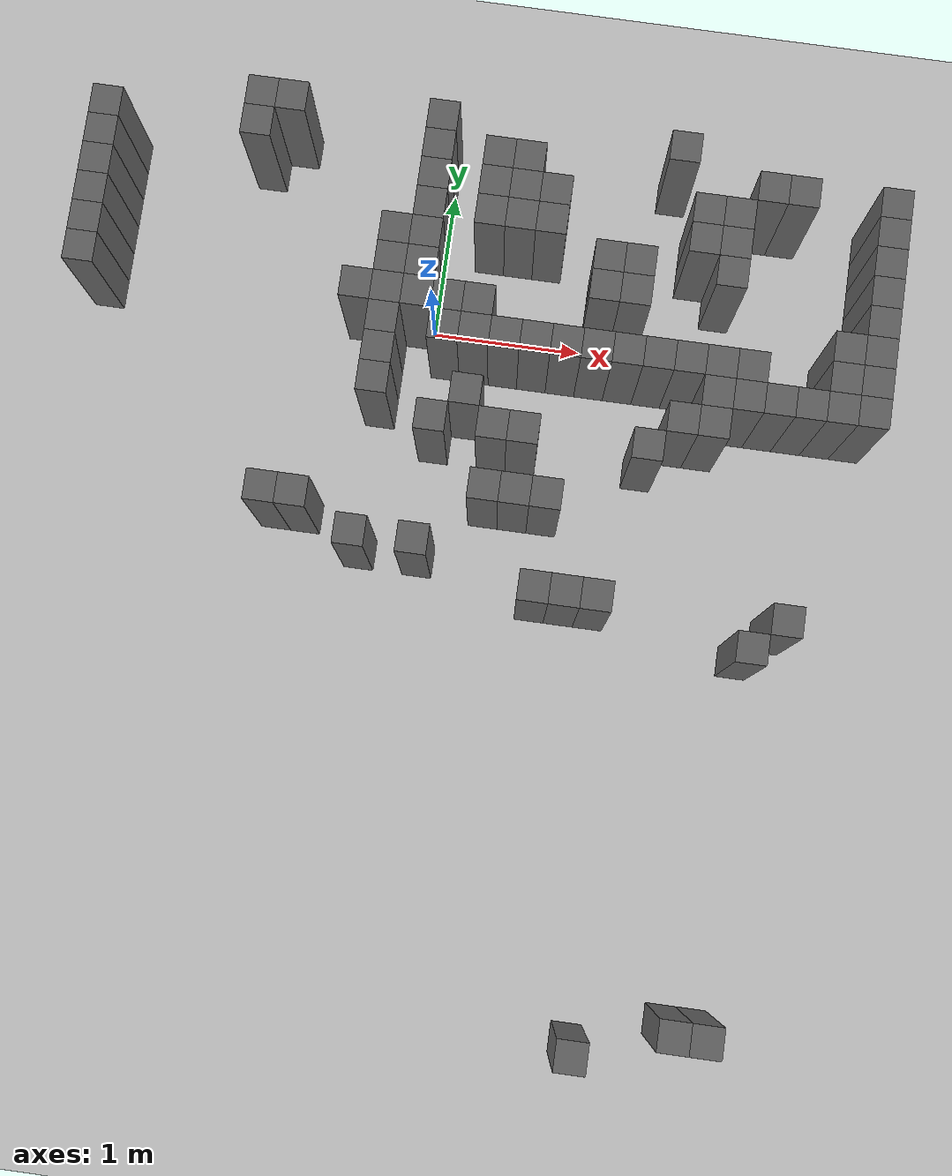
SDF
<sdf version="1.6">
 <world name="slam_world">
  <include><uri>model://sun</uri></include>
  <include><uri>model://ground_plane</uri></include>
  <model name="wall_92">
   <static>true</static>
   <pose>-1.290 1.190 0.500 0 0 0</pose>
   <link name="link">
    <collision name="collision"><geometry><box><size>0.200 0.200 1.000</size></box></geometry></collision>
    <visual name="visual">
     <geometry><box><size>0.200 0.200 1.000</size></box></geometry>
     <material><ambient>0.3 0.3 0.3 1</ambient><diffuse>0.4 0.4 0.4 1</diffuse></material>
    </visual>
   </link>
  </model>
  <model name="wall_93">
   <static>true</static>
   <pose>-1.090 1.190 0.500 0 0 0</pose>
   <link name="link">
    <collision name="collision"><geometry><box><size>0.200 0.200 1.000</size></box></geometry></collision>
    <visual name="visual">
     <geometry><box><size>0.200 0.200 1.000</size></box></geometry>
     <material><ambient>0.3 0.3 0.3 1</ambient><diffuse>0.4 0.4 0.4 1</diffuse></material>
    </visual>
   </link>
  </model>
  <model name="wall_94">
   <static>true</static>
   <pose>-0.090 1.190 0.500 0 0 0</pose>
   <link name="link">
    <collision name="collision"><geometry><box><size>0.200 0.200 1.000</size></box></geometry></collision>
    <visual name="visual">
     <geometry><box><size>0.200 0.200 1.000</size></box></geometry>
     <material><ambient>0.3 0.3 0.3 1</ambient><diffuse>0.4 0.4 0.4 1</diffuse></material>
    </visual>
   </link>
  </model>
  <model name="wall_95">
   <static>true</static>
   <pose>1.510 1.190 0.500 0 0 0</pose>
   <link name="link">
    <collision name="collision"><geometry><box><size>0.200 0.200 1.000</size></box></geometry></collision>
    <visual name="visual">
     <geometry><box><size>0.200 0.200 1.000</size></box></geometry>
     <material><ambient>0.3 0.3 0.3 1</ambient><diffuse>0.4 0.4 0.4 1</diffuse></material>
    </visual>
   </link>
  </model>
  <model name="wall_98">
   <static>true</static>
   <pose>-2.290 0.990 0.500 0 0 0</pose>
   <link name="link">
    <collision name="collision"><geometry><box><size>0.200 0.200 1.000</size></box></geometry></collision>
    <visual name="visual">
     <geometry><box><size>0.200 0.200 1.000</size></box></geometry>
     <material><ambient>0.3 0.3 0.3 1</ambient><diffuse>0.4 0.4 0.4 1</diffuse></material>
    </visual>
   </link>
  </model>
  <model name="wall_99">
   <static>true</static>
   <pose>-1.290 0.990 0.500 0 0 0</pose>
   <link name="link">
    <collision name="collision"><geometry><box><size>0.200 0.200 1.000</size></box></geometry></collision>
    <visual name="visual">
     <geometry><box><size>0.200 0.200 1.000</size></box></geometry>
     <material><ambient>0.3 0.3 0.3 1</ambient><diffuse>0.4 0.4 0.4 1</diffuse></material>
    </visual>
   </link>
  </model>
  <model name="wall_100">
   <static>true</static>
   <pose>-0.090 0.990 0.500 0 0 0</pose>
   <link name="link">
    <collision name="collision"><geometry><box><size>0.200 0.200 1.000</size></box></geometry></collision>
    <visual name="visual">
     <geometry><box><size>0.200 0.200 1.000</size></box></geometry>
     <material><ambient>0.3 0.3 0.3 1</ambient><diffuse>0.4 0.4 0.4 1</diffuse></material>
    </visual>
   </link>
  </model>
  <model name="wall_101">
   <static>true</static>
   <pose>0.310 0.990 0.500 0 0 0</pose>
   <link name="link">
    <collision name="collision"><geometry><box><size>0.200 0.200 1.000</size></box></geometry></collision>
    <visual name="visual">
     <geometry><box><size>0.200 0.200 1.000</size></box></geometry>
     <material><ambient>0.3 0.3 0.3 1</ambient><diffuse>0.4 0.4 0.4 1</diffuse></material>
    </visual>
   </link>
  </model>
  <model name="wall_102">
   <static>true</static>
   <pose>0.510 0.990 0.500 0 0 0</pose>
   <link name="link">
    <collision name="collision"><geometry><box><size>0.200 0.200 1.000</size></box></geometry></collision>
    <visual name="visual">
     <geometry><box><size>0.200 0.200 1.000</size></box></geometry>
     <material><ambient>0.3 0.3 0.3 1</ambient><diffuse>0.4 0.4 0.4 1</diffuse></material>
    </visual>
   </link>
  </model>
  <model name="wall_103">
   <static>true</static>
   <pose>2.110 0.990 0.500 0 0 0</pose>
   <link name="link">
    <collision name="collision"><geometry><box><size>0.200 0.200 1.000</size></box></geometry></collision>
    <visual name="visual">
     <geometry><box><size>0.200 0.200 1.000</size></box></geometry>
     <material><ambient>0.3 0.3 0.3 1</ambient><diffuse>0.4 0.4 0.4 1</diffuse></material>
    </visual>
   </link>
  </model>
  <model name="wall_104">
   <static>true</static>
   <pose>2.310 0.990 0.500 0 0 0</pose>
   <link name="link">
    <collision name="collision"><geometry><box><size>0.200 0.200 1.000</size></box></geometry></collision>
    <visual name="visual">
     <geometry><box><size>0.200 0.200 1.000</size></box></geometry>
     <material><ambient>0.3 0.3 0.3 1</ambient><diffuse>0.4 0.4 0.4 1</diffuse></material>
    </visual>
   </link>
  </model>
  <model name="wall_105">
   <static>true</static>
   <pose>2.910 0.990 0.500 0 0 0</pose>
   <link name="link">
    <collision name="collision"><geometry><box><size>0.200 0.200 1.000</size></box></geometry></collision>
    <visual name="visual">
     <geometry><box><size>0.200 0.200 1.000</size></box></geometry>
     <material><ambient>0.3 0.3 0.3 1</ambient><diffuse>0.4 0.4 0.4 1</diffuse></material>
    </visual>
   </link>
  </model>
  <model name="wall_106">
   <static>true</static>
   <pose>-2.290 0.790 0.500 0 0 0</pose>
   <link name="link">
    <collision name="collision"><geometry><box><size>0.200 0.200 1.000</size></box></geometry></collision>
    <visual name="visual">
     <geometry><box><size>0.200 0.200 1.000</size></box></geometry>
     <material><ambient>0.3 0.3 0.3 1</ambient><diffuse>0.4 0.4 0.4 1</diffuse></material>
    </visual>
   </link>
  </model>
  <model name="wall_107">
   <static>true</static>
   <pose>-0.090 0.790 0.500 0 0 0</pose>
   <link name="link">
    <collision name="collision"><geometry><box><size>0.200 0.200 1.000</size></box></geometry></collision>
    <visual name="visual">
     <geometry><box><size>0.200 0.200 1.000</size></box></geometry>
     <material><ambient>0.3 0.3 0.3 1</ambient><diffuse>0.4 0.4 0.4 1</diffuse></material>
    </visual>
   </link>
  </model>
  <model name="wall_108">
   <static>true</static>
   <pose>0.310 0.790 0.500 0 0 0</pose>
   <link name="link">
    <collision name="collision"><geometry><box><size>0.200 0.200 1.000</size></box></geometry></collision>
    <visual name="visual">
     <geometry><box><size>0.200 0.200 1.000</size></box></geometry>
     <material><ambient>0.3 0.3 0.3 1</ambient><diffuse>0.4 0.4 0.4 1</diffuse></material>
    </visual>
   </link>
  </model>
  <model name="wall_109">
   <static>true</static>
   <pose>0.510 0.790 0.500 0 0 0</pose>
   <link name="link">
    <collision name="collision"><geometry><box><size>0.200 0.200 1.000</size></box></geometry></collision>
    <visual name="visual">
     <geometry><box><size>0.200 0.200 1.000</size></box></geometry>
     <material><ambient>0.3 0.3 0.3 1</ambient><diffuse>0.4 0.4 0.4 1</diffuse></material>
    </visual>
   </link>
  </model>
  <model name="wall_110">
   <static>true</static>
   <pose>0.710 0.790 0.500 0 0 0</pose>
   <link name="link">
    <collision name="collision"><geometry><box><size>0.200 0.200 1.000</size></box></geometry></collision>
    <visual name="visual">
     <geometry><box><size>0.200 0.200 1.000</size></box></geometry>
     <material><ambient>0.3 0.3 0.3 1</ambient><diffuse>0.4 0.4 0.4 1</diffuse></material>
    </visual>
   </link>
  </model>
  <model name="wall_111">
   <static>true</static>
   <pose>1.710 0.790 0.500 0 0 0</pose>
   <link name="link">
    <collision name="collision"><geometry><box><size>0.200 0.200 1.000</size></box></geometry></collision>
    <visual name="visual">
     <geometry><box><size>0.200 0.200 1.000</size></box></geometry>
     <material><ambient>0.3 0.3 0.3 1</ambient><diffuse>0.4 0.4 0.4 1</diffuse></material>
    </visual>
   </link>
  </model>
  <model name="wall_112">
   <static>true</static>
   <pose>1.910 0.790 0.500 0 0 0</pose>
   <link name="link">
    <collision name="collision"><geometry><box><size>0.200 0.200 1.000</size></box></geometry></collision>
    <visual name="visual">
     <geometry><box><size>0.200 0.200 1.000</size></box></geometry>
     <material><ambient>0.3 0.3 0.3 1</ambient><diffuse>0.4 0.4 0.4 1</diffuse></material>
    </visual>
   </link>
  </model>
  <model name="wall_113">
   <static>true</static>
   <pose>2.910 0.790 0.500 0 0 0</pose>
   <link name="link">
    <collision name="collision"><geometry><box><size>0.200 0.200 1.000</size></box></geometry></collision>
    <visual name="visual">
     <geometry><box><size>0.200 0.200 1.000</size></box></geometry>
     <material><ambient>0.3 0.3 0.3 1</ambient><diffuse>0.4 0.4 0.4 1</diffuse></material>
    </visual>
   </link>
  </model>
  <model name="wall_114">
   <static>true</static>
   <pose>-2.290 0.590 0.500 0 0 0</pose>
   <link name="link">
    <collision name="collision"><geometry><box><size>0.200 0.200 1.000</size></box></geometry></collision>
    <visual name="visual">
     <geometry><box><size>0.200 0.200 1.000</size></box></geometry>
     <material><ambient>0.3 0.3 0.3 1</ambient><diffuse>0.4 0.4 0.4 1</diffuse></material>
    </visual>
   </link>
  </model>
  <model name="wall_115">
   <static>true</static>
   <pose>-0.090 0.590 0.500 0 0 0</pose>
   <link name="link">
    <collision name="collision"><geometry><box><size>0.200 0.200 1.000</size></box></geometry></collision>
    <visual name="visual">
     <geometry><box><size>0.200 0.200 1.000</size></box></geometry>
     <material><ambient>0.3 0.3 0.3 1</ambient><diffuse>0.4 0.4 0.4 1</diffuse></material>
    </visual>
   </link>
  </model>
  <model name="wall_116">
   <static>true</static>
   <pose>0.310 0.590 0.500 0 0 0</pose>
   <link name="link">
    <collision name="collision"><geometry><box><size>0.200 0.200 1.000</size></box></geometry></collision>
    <visual name="visual">
     <geometry><box><size>0.200 0.200 1.000</size></box></geometry>
     <material><ambient>0.3 0.3 0.3 1</ambient><diffuse>0.4 0.4 0.4 1</diffuse></material>
    </visual>
   </link>
  </model>
  <model name="wall_117">
   <static>true</static>
   <pose>0.510 0.590 0.500 0 0 0</pose>
   <link name="link">
    <collision name="collision"><geometry><box><size>0.200 0.200 1.000</size></box></geometry></collision>
    <visual name="visual">
     <geometry><box><size>0.200 0.200 1.000</size></box></geometry>
     <material><ambient>0.3 0.3 0.3 1</ambient><diffuse>0.4 0.4 0.4 1</diffuse></material>
    </visual>
   </link>
  </model>
  <model name="wall_118">
   <static>true</static>
   <pose>0.710 0.590 0.500 0 0 0</pose>
   <link name="link">
    <collision name="collision"><geometry><box><size>0.200 0.200 1.000</size></box></geometry></collision>
    <visual name="visual">
     <geometry><box><size>0.200 0.200 1.000</size></box></geometry>
     <material><ambient>0.3 0.3 0.3 1</ambient><diffuse>0.4 0.4 0.4 1</diffuse></material>
    </visual>
   </link>
  </model>
  <model name="wall_119">
   <static>true</static>
   <pose>1.710 0.590 0.500 0 0 0</pose>
   <link name="link">
    <collision name="collision"><geometry><box><size>0.200 0.200 1.000</size></box></geometry></collision>
    <visual name="visual">
     <geometry><box><size>0.200 0.200 1.000</size></box></geometry>
     <material><ambient>0.3 0.3 0.3 1</ambient><diffuse>0.4 0.4 0.4 1</diffuse></material>
    </visual>
   </link>
  </model>
  <model name="wall_120">
   <static>true</static>
   <pose>1.910 0.590 0.500 0 0 0</pose>
   <link name="link">
    <collision name="collision"><geometry><box><size>0.200 0.200 1.000</size></box></geometry></collision>
    <visual name="visual">
     <geometry><box><size>0.200 0.200 1.000</size></box></geometry>
     <material><ambient>0.3 0.3 0.3 1</ambient><diffuse>0.4 0.4 0.4 1</diffuse></material>
    </visual>
   </link>
  </model>
  <model name="wall_121">
   <static>true</static>
   <pose>2.910 0.590 0.500 0 0 0</pose>
   <link name="link">
    <collision name="collision"><geometry><box><size>0.200 0.200 1.000</size></box></geometry></collision>
    <visual name="visual">
     <geometry><box><size>0.200 0.200 1.000</size></box></geometry>
     <material><ambient>0.3 0.3 0.3 1</ambient><diffuse>0.4 0.4 0.4 1</diffuse></material>
    </visual>
   </link>
  </model>
  <model name="wall_122">
   <static>true</static>
   <pose>-2.290 0.390 0.500 0 0 0</pose>
   <link name="link">
    <collision name="collision"><geometry><box><size>0.200 0.200 1.000</size></box></geometry></collision>
    <visual name="visual">
     <geometry><box><size>0.200 0.200 1.000</size></box></geometry>
     <material><ambient>0.3 0.3 0.3 1</ambient><diffuse>0.4 0.4 0.4 1</diffuse></material>
    </visual>
   </link>
  </model>
  <model name="wall_123">
   <static>true</static>
   <pose>-0.290 0.390 0.500 0 0 0</pose>
   <link name="link">
    <collision name="collision"><geometry><box><size>0.200 0.200 1.000</size></box></geometry></collision>
    <visual name="visual">
     <geometry><box><size>0.200 0.200 1.000</size></box></geometry>
     <material><ambient>0.3 0.3 0.3 1</ambient><diffuse>0.4 0.4 0.4 1</diffuse></material>
    </visual>
   </link>
  </model>
  <model name="wall_124">
   <static>true</static>
   <pose>-0.090 0.390 0.500 0 0 0</pose>
   <link name="link">
    <collision name="collision"><geometry><box><size>0.200 0.200 1.000</size></box></geometry></collision>
    <visual name="visual">
     <geometry><box><size>0.200 0.200 1.000</size></box></geometry>
     <material><ambient>0.3 0.3 0.3 1</ambient><diffuse>0.4 0.4 0.4 1</diffuse></material>
    </visual>
   </link>
  </model>
  <model name="wall_125">
   <static>true</static>
   <pose>1.110 0.390 0.500 0 0 0</pose>
   <link name="link">
    <collision name="collision"><geometry><box><size>0.200 0.200 1.000</size></box></geometry></collision>
    <visual name="visual">
     <geometry><box><size>0.200 0.200 1.000</size></box></geometry>
     <material><ambient>0.3 0.3 0.3 1</ambient><diffuse>0.4 0.4 0.4 1</diffuse></material>
    </visual>
   </link>
  </model>
  <model name="wall_126">
   <static>true</static>
   <pose>1.310 0.390 0.500 0 0 0</pose>
   <link name="link">
    <collision name="collision"><geometry><box><size>0.200 0.200 1.000</size></box></geometry></collision>
    <visual name="visual">
     <geometry><box><size>0.200 0.200 1.000</size></box></geometry>
     <material><ambient>0.3 0.3 0.3 1</ambient><diffuse>0.4 0.4 0.4 1</diffuse></material>
    </visual>
   </link>
  </model>
  <model name="wall_127">
   <static>true</static>
   <pose>1.910 0.390 0.500 0 0 0</pose>
   <link name="link">
    <collision name="collision"><geometry><box><size>0.200 0.200 1.000</size></box></geometry></collision>
    <visual name="visual">
     <geometry><box><size>0.200 0.200 1.000</size></box></geometry>
     <material><ambient>0.3 0.3 0.3 1</ambient><diffuse>0.4 0.4 0.4 1</diffuse></material>
    </visual>
   </link>
  </model>
  <model name="wall_128">
   <static>true</static>
   <pose>2.910 0.390 0.500 0 0 0</pose>
   <link name="link">
    <collision name="collision"><geometry><box><size>0.200 0.200 1.000</size></box></geometry></collision>
    <visual name="visual">
     <geometry><box><size>0.200 0.200 1.000</size></box></geometry>
     <material><ambient>0.3 0.3 0.3 1</ambient><diffuse>0.4 0.4 0.4 1</diffuse></material>
    </visual>
   </link>
  </model>
  <model name="wall_129">
   <static>true</static>
   <pose>-2.290 0.190 0.500 0 0 0</pose>
   <link name="link">
    <collision name="collision"><geometry><box><size>0.200 0.200 1.000</size></box></geometry></collision>
    <visual name="visual">
     <geometry><box><size>0.200 0.200 1.000</size></box></geometry>
     <material><ambient>0.3 0.3 0.3 1</ambient><diffuse>0.4 0.4 0.4 1</diffuse></material>
    </visual>
   </link>
  </model>
  <model name="wall_130">
   <static>true</static>
   <pose>-0.290 0.190 0.500 0 0 0</pose>
   <link name="link">
    <collision name="collision"><geometry><box><size>0.200 0.200 1.000</size></box></geometry></collision>
    <visual name="visual">
     <geometry><box><size>0.200 0.200 1.000</size></box></geometry>
     <material><ambient>0.3 0.3 0.3 1</ambient><diffuse>0.4 0.4 0.4 1</diffuse></material>
    </visual>
   </link>
  </model>
  <model name="wall_131">
   <static>true</static>
   <pose>-0.090 0.190 0.500 0 0 0</pose>
   <link name="link">
    <collision name="collision"><geometry><box><size>0.200 0.200 1.000</size></box></geometry></collision>
    <visual name="visual">
     <geometry><box><size>0.200 0.200 1.000</size></box></geometry>
     <material><ambient>0.3 0.3 0.3 1</ambient><diffuse>0.4 0.4 0.4 1</diffuse></material>
    </visual>
   </link>
  </model>
  <model name="wall_132">
   <static>true</static>
   <pose>1.110 0.190 0.500 0 0 0</pose>
   <link name="link">
    <collision name="collision"><geometry><box><size>0.200 0.200 1.000</size></box></geometry></collision>
    <visual name="visual">
     <geometry><box><size>0.200 0.200 1.000</size></box></geometry>
     <material><ambient>0.3 0.3 0.3 1</ambient><diffuse>0.4 0.4 0.4 1</diffuse></material>
    </visual>
   </link>
  </model>
  <model name="wall_133">
   <static>true</static>
   <pose>1.310 0.190 0.500 0 0 0</pose>
   <link name="link">
    <collision name="collision"><geometry><box><size>0.200 0.200 1.000</size></box></geometry></collision>
    <visual name="visual">
     <geometry><box><size>0.200 0.200 1.000</size></box></geometry>
     <material><ambient>0.3 0.3 0.3 1</ambient><diffuse>0.4 0.4 0.4 1</diffuse></material>
    </visual>
   </link>
  </model>
  <model name="wall_134">
   <static>true</static>
   <pose>2.910 0.190 0.500 0 0 0</pose>
   <link name="link">
    <collision name="collision"><geometry><box><size>0.200 0.200 1.000</size></box></geometry></collision>
    <visual name="visual">
     <geometry><box><size>0.200 0.200 1.000</size></box></geometry>
     <material><ambient>0.3 0.3 0.3 1</ambient><diffuse>0.4 0.4 0.4 1</diffuse></material>
    </visual>
   </link>
  </model>
  <model name="wall_135">
   <static>true</static>
   <pose>-2.290 -0.010 0.500 0 0 0</pose>
   <link name="link">
    <collision name="collision"><geometry><box><size>0.200 0.200 1.000</size></box></geometry></collision>
    <visual name="visual">
     <geometry><box><size>0.200 0.200 1.000</size></box></geometry>
     <material><ambient>0.3 0.3 0.3 1</ambient><diffuse>0.4 0.4 0.4 1</diffuse></material>
    </visual>
   </link>
  </model>
  <model name="wall_136">
   <static>true</static>
   <pose>-0.490 -0.010 0.500 0 0 0</pose>
   <link name="link">
    <collision name="collision"><geometry><box><size>0.200 0.200 1.000</size></box></geometry></collision>
    <visual name="visual">
     <geometry><box><size>0.200 0.200 1.000</size></box></geometry>
     <material><ambient>0.3 0.3 0.3 1</ambient><diffuse>0.4 0.4 0.4 1</diffuse></material>
    </visual>
   </link>
  </model>
  <model name="wall_137">
   <static>true</static>
   <pose>-0.290 -0.010 0.500 0 0 0</pose>
   <link name="link">
    <collision name="collision"><geometry><box><size>0.200 0.200 1.000</size></box></geometry></collision>
    <visual name="visual">
     <geometry><box><size>0.200 0.200 1.000</size></box></geometry>
     <material><ambient>0.3 0.3 0.3 1</ambient><diffuse>0.4 0.4 0.4 1</diffuse></material>
    </visual>
   </link>
  </model>
  <model name="wall_138">
   <static>true</static>
   <pose>-0.090 -0.010 0.500 0 0 0</pose>
   <link name="link">
    <collision name="collision"><geometry><box><size>0.200 0.200 1.000</size></box></geometry></collision>
    <visual name="visual">
     <geometry><box><size>0.200 0.200 1.000</size></box></geometry>
     <material><ambient>0.3 0.3 0.3 1</ambient><diffuse>0.4 0.4 0.4 1</diffuse></material>
    </visual>
   </link>
  </model>
  <model name="wall_139">
   <static>true</static>
   <pose>0.110 -0.010 0.500 0 0 0</pose>
   <link name="link">
    <collision name="collision"><geometry><box><size>0.200 0.200 1.000</size></box></geometry></collision>
    <visual name="visual">
     <geometry><box><size>0.200 0.200 1.000</size></box></geometry>
     <material><ambient>0.3 0.3 0.3 1</ambient><diffuse>0.4 0.4 0.4 1</diffuse></material>
    </visual>
   </link>
  </model>
  <model name="wall_140">
   <static>true</static>
   <pose>0.310 -0.010 0.500 0 0 0</pose>
   <link name="link">
    <collision name="collision"><geometry><box><size>0.200 0.200 1.000</size></box></geometry></collision>
    <visual name="visual">
     <geometry><box><size>0.200 0.200 1.000</size></box></geometry>
     <material><ambient>0.3 0.3 0.3 1</ambient><diffuse>0.4 0.4 0.4 1</diffuse></material>
    </visual>
   </link>
  </model>
  <model name="wall_141">
   <static>true</static>
   <pose>2.710 -0.010 0.500 0 0 0</pose>
   <link name="link">
    <collision name="collision"><geometry><box><size>0.200 0.200 1.000</size></box></geometry></collision>
    <visual name="visual">
     <geometry><box><size>0.200 0.200 1.000</size></box></geometry>
     <material><ambient>0.3 0.3 0.3 1</ambient><diffuse>0.4 0.4 0.4 1</diffuse></material>
    </visual>
   </link>
  </model>
  <model name="wall_142">
   <static>true</static>
   <pose>2.910 -0.010 0.500 0 0 0</pose>
   <link name="link">
    <collision name="collision"><geometry><box><size>0.200 0.200 1.000</size></box></geometry></collision>
    <visual name="visual">
     <geometry><box><size>0.200 0.200 1.000</size></box></geometry>
     <material><ambient>0.3 0.3 0.3 1</ambient><diffuse>0.4 0.4 0.4 1</diffuse></material>
    </visual>
   </link>
  </model>
  <model name="wall_143">
   <static>true</static>
   <pose>-0.290 -0.210 0.500 0 0 0</pose>
   <link name="link">
    <collision name="collision"><geometry><box><size>0.200 0.200 1.000</size></box></geometry></collision>
    <visual name="visual">
     <geometry><box><size>0.200 0.200 1.000</size></box></geometry>
     <material><ambient>0.3 0.3 0.3 1</ambient><diffuse>0.4 0.4 0.4 1</diffuse></material>
    </visual>
   </link>
  </model>
  <model name="wall_144">
   <static>true</static>
   <pose>0.110 -0.210 0.500 0 0 0</pose>
   <link name="link">
    <collision name="collision"><geometry><box><size>0.200 0.200 1.000</size></box></geometry></collision>
    <visual name="visual">
     <geometry><box><size>0.200 0.200 1.000</size></box></geometry>
     <material><ambient>0.3 0.3 0.3 1</ambient><diffuse>0.4 0.4 0.4 1</diffuse></material>
    </visual>
   </link>
  </model>
  <model name="wall_145">
   <static>true</static>
   <pose>0.310 -0.210 0.500 0 0 0</pose>
   <link name="link">
    <collision name="collision"><geometry><box><size>0.200 0.200 1.000</size></box></geometry></collision>
    <visual name="visual">
     <geometry><box><size>0.200 0.200 1.000</size></box></geometry>
     <material><ambient>0.3 0.3 0.3 1</ambient><diffuse>0.4 0.4 0.4 1</diffuse></material>
    </visual>
   </link>
  </model>
  <model name="wall_146">
   <static>true</static>
   <pose>0.510 -0.210 0.500 0 0 0</pose>
   <link name="link">
    <collision name="collision"><geometry><box><size>0.200 0.200 1.000</size></box></geometry></collision>
    <visual name="visual">
     <geometry><box><size>0.200 0.200 1.000</size></box></geometry>
     <material><ambient>0.3 0.3 0.3 1</ambient><diffuse>0.4 0.4 0.4 1</diffuse></material>
    </visual>
   </link>
  </model>
  <model name="wall_147">
   <static>true</static>
   <pose>0.710 -0.210 0.500 0 0 0</pose>
   <link name="link">
    <collision name="collision"><geometry><box><size>0.200 0.200 1.000</size></box></geometry></collision>
    <visual name="visual">
     <geometry><box><size>0.200 0.200 1.000</size></box></geometry>
     <material><ambient>0.3 0.3 0.3 1</ambient><diffuse>0.4 0.4 0.4 1</diffuse></material>
    </visual>
   </link>
  </model>
  <model name="wall_148">
   <static>true</static>
   <pose>0.910 -0.210 0.500 0 0 0</pose>
   <link name="link">
    <collision name="collision"><geometry><box><size>0.200 0.200 1.000</size></box></geometry></collision>
    <visual name="visual">
     <geometry><box><size>0.200 0.200 1.000</size></box></geometry>
     <material><ambient>0.3 0.3 0.3 1</ambient><diffuse>0.4 0.4 0.4 1</diffuse></material>
    </visual>
   </link>
  </model>
  <model name="wall_149">
   <static>true</static>
   <pose>1.110 -0.210 0.500 0 0 0</pose>
   <link name="link">
    <collision name="collision"><geometry><box><size>0.200 0.200 1.000</size></box></geometry></collision>
    <visual name="visual">
     <geometry><box><size>0.200 0.200 1.000</size></box></geometry>
     <material><ambient>0.3 0.3 0.3 1</ambient><diffuse>0.4 0.4 0.4 1</diffuse></material>
    </visual>
   </link>
  </model>
  <model name="wall_150">
   <static>true</static>
   <pose>1.310 -0.210 0.500 0 0 0</pose>
   <link name="link">
    <collision name="collision"><geometry><box><size>0.200 0.200 1.000</size></box></geometry></collision>
    <visual name="visual">
     <geometry><box><size>0.200 0.200 1.000</size></box></geometry>
     <material><ambient>0.3 0.3 0.3 1</ambient><diffuse>0.4 0.4 0.4 1</diffuse></material>
    </visual>
   </link>
  </model>
  <model name="wall_151">
   <static>true</static>
   <pose>1.510 -0.210 0.500 0 0 0</pose>
   <link name="link">
    <collision name="collision"><geometry><box><size>0.200 0.200 1.000</size></box></geometry></collision>
    <visual name="visual">
     <geometry><box><size>0.200 0.200 1.000</size></box></geometry>
     <material><ambient>0.3 0.3 0.3 1</ambient><diffuse>0.4 0.4 0.4 1</diffuse></material>
    </visual>
   </link>
  </model>
  <model name="wall_152">
   <static>true</static>
   <pose>1.710 -0.210 0.500 0 0 0</pose>
   <link name="link">
    <collision name="collision"><geometry><box><size>0.200 0.200 1.000</size></box></geometry></collision>
    <visual name="visual">
     <geometry><box><size>0.200 0.200 1.000</size></box></geometry>
     <material><ambient>0.3 0.3 0.3 1</ambient><diffuse>0.4 0.4 0.4 1</diffuse></material>
    </visual>
   </link>
  </model>
  <model name="wall_153">
   <static>true</static>
   <pose>1.910 -0.210 0.500 0 0 0</pose>
   <link name="link">
    <collision name="collision"><geometry><box><size>0.200 0.200 1.000</size></box></geometry></collision>
    <visual name="visual">
     <geometry><box><size>0.200 0.200 1.000</size></box></geometry>
     <material><ambient>0.3 0.3 0.3 1</ambient><diffuse>0.4 0.4 0.4 1</diffuse></material>
    </visual>
   </link>
  </model>
  <model name="wall_154">
   <static>true</static>
   <pose>2.110 -0.210 0.500 0 0 0</pose>
   <link name="link">
    <collision name="collision"><geometry><box><size>0.200 0.200 1.000</size></box></geometry></collision>
    <visual name="visual">
     <geometry><box><size>0.200 0.200 1.000</size></box></geometry>
     <material><ambient>0.3 0.3 0.3 1</ambient><diffuse>0.4 0.4 0.4 1</diffuse></material>
    </visual>
   </link>
  </model>
  <model name="wall_155">
   <static>true</static>
   <pose>2.710 -0.210 0.500 0 0 0</pose>
   <link name="link">
    <collision name="collision"><geometry><box><size>0.200 0.200 1.000</size></box></geometry></collision>
    <visual name="visual">
     <geometry><box><size>0.200 0.200 1.000</size></box></geometry>
     <material><ambient>0.3 0.3 0.3 1</ambient><diffuse>0.4 0.4 0.4 1</diffuse></material>
    </visual>
   </link>
  </model>
  <model name="wall_156">
   <static>true</static>
   <pose>2.910 -0.210 0.500 0 0 0</pose>
   <link name="link">
    <collision name="collision"><geometry><box><size>0.200 0.200 1.000</size></box></geometry></collision>
    <visual name="visual">
     <geometry><box><size>0.200 0.200 1.000</size></box></geometry>
     <material><ambient>0.3 0.3 0.3 1</ambient><diffuse>0.4 0.4 0.4 1</diffuse></material>
    </visual>
   </link>
  </model>
  <model name="wall_157">
   <static>true</static>
   <pose>-0.290 -0.410 0.500 0 0 0</pose>
   <link name="link">
    <collision name="collision"><geometry><box><size>0.200 0.200 1.000</size></box></geometry></collision>
    <visual name="visual">
     <geometry><box><size>0.200 0.200 1.000</size></box></geometry>
     <material><ambient>0.3 0.3 0.3 1</ambient><diffuse>0.4 0.4 0.4 1</diffuse></material>
    </visual>
   </link>
  </model>
  <model name="wall_158">
   <static>true</static>
   <pose>1.910 -0.410 0.500 0 0 0</pose>
   <link name="link">
    <collision name="collision"><geometry><box><size>0.200 0.200 1.000</size></box></geometry></collision>
    <visual name="visual">
     <geometry><box><size>0.200 0.200 1.000</size></box></geometry>
     <material><ambient>0.3 0.3 0.3 1</ambient><diffuse>0.4 0.4 0.4 1</diffuse></material>
    </visual>
   </link>
  </model>
  <model name="wall_159">
   <static>true</static>
   <pose>2.110 -0.410 0.500 0 0 0</pose>
   <link name="link">
    <collision name="collision"><geometry><box><size>0.200 0.200 1.000</size></box></geometry></collision>
    <visual name="visual">
     <geometry><box><size>0.200 0.200 1.000</size></box></geometry>
     <material><ambient>0.3 0.3 0.3 1</ambient><diffuse>0.4 0.4 0.4 1</diffuse></material>
    </visual>
   </link>
  </model>
  <model name="wall_160">
   <static>true</static>
   <pose>2.310 -0.410 0.500 0 0 0</pose>
   <link name="link">
    <collision name="collision"><geometry><box><size>0.200 0.200 1.000</size></box></geometry></collision>
    <visual name="visual">
     <geometry><box><size>0.200 0.200 1.000</size></box></geometry>
     <material><ambient>0.3 0.3 0.3 1</ambient><diffuse>0.4 0.4 0.4 1</diffuse></material>
    </visual>
   </link>
  </model>
  <model name="wall_161">
   <static>true</static>
   <pose>2.510 -0.410 0.500 0 0 0</pose>
   <link name="link">
    <collision name="collision"><geometry><box><size>0.200 0.200 1.000</size></box></geometry></collision>
    <visual name="visual">
     <geometry><box><size>0.200 0.200 1.000</size></box></geometry>
     <material><ambient>0.3 0.3 0.3 1</ambient><diffuse>0.4 0.4 0.4 1</diffuse></material>
    </visual>
   </link>
  </model>
  <model name="wall_162">
   <static>true</static>
   <pose>2.710 -0.410 0.500 0 0 0</pose>
   <link name="link">
    <collision name="collision"><geometry><box><size>0.200 0.200 1.000</size></box></geometry></collision>
    <visual name="visual">
     <geometry><box><size>0.200 0.200 1.000</size></box></geometry>
     <material><ambient>0.3 0.3 0.3 1</ambient><diffuse>0.4 0.4 0.4 1</diffuse></material>
    </visual>
   </link>
  </model>
  <model name="wall_163">
   <static>true</static>
   <pose>2.910 -0.410 0.500 0 0 0</pose>
   <link name="link">
    <collision name="collision"><geometry><box><size>0.200 0.200 1.000</size></box></geometry></collision>
    <visual name="visual">
     <geometry><box><size>0.200 0.200 1.000</size></box></geometry>
     <material><ambient>0.3 0.3 0.3 1</ambient><diffuse>0.4 0.4 0.4 1</diffuse></material>
    </visual>
   </link>
  </model>
  <model name="wall_164">
   <static>true</static>
   <pose>-0.290 -0.610 0.500 0 0 0</pose>
   <link name="link">
    <collision name="collision"><geometry><box><size>0.200 0.200 1.000</size></box></geometry></collision>
    <visual name="visual">
     <geometry><box><size>0.200 0.200 1.000</size></box></geometry>
     <material><ambient>0.3 0.3 0.3 1</ambient><diffuse>0.4 0.4 0.4 1</diffuse></material>
    </visual>
   </link>
  </model>
  <model name="wall_165">
   <static>true</static>
   <pose>0.310 -0.610 0.500 0 0 0</pose>
   <link name="link">
    <collision name="collision"><geometry><box><size>0.200 0.200 1.000</size></box></geometry></collision>
    <visual name="visual">
     <geometry><box><size>0.200 0.200 1.000</size></box></geometry>
     <material><ambient>0.3 0.3 0.3 1</ambient><diffuse>0.4 0.4 0.4 1</diffuse></material>
    </visual>
   </link>
  </model>
  <model name="wall_166">
   <static>true</static>
   <pose>1.710 -0.610 0.500 0 0 0</pose>
   <link name="link">
    <collision name="collision"><geometry><box><size>0.200 0.200 1.000</size></box></geometry></collision>
    <visual name="visual">
     <geometry><box><size>0.200 0.200 1.000</size></box></geometry>
     <material><ambient>0.3 0.3 0.3 1</ambient><diffuse>0.4 0.4 0.4 1</diffuse></material>
    </visual>
   </link>
  </model>
  <model name="wall_167">
   <static>true</static>
   <pose>1.910 -0.610 0.500 0 0 0</pose>
   <link name="link">
    <collision name="collision"><geometry><box><size>0.200 0.200 1.000</size></box></geometry></collision>
    <visual name="visual">
     <geometry><box><size>0.200 0.200 1.000</size></box></geometry>
     <material><ambient>0.3 0.3 0.3 1</ambient><diffuse>0.4 0.4 0.4 1</diffuse></material>
    </visual>
   </link>
  </model>
  <model name="wall_168">
   <static>true</static>
   <pose>0.110 -0.810 0.500 0 0 0</pose>
   <link name="link">
    <collision name="collision"><geometry><box><size>0.200 0.200 1.000</size></box></geometry></collision>
    <visual name="visual">
     <geometry><box><size>0.200 0.200 1.000</size></box></geometry>
     <material><ambient>0.3 0.3 0.3 1</ambient><diffuse>0.4 0.4 0.4 1</diffuse></material>
    </visual>
   </link>
  </model>
  <model name="wall_169">
   <static>true</static>
   <pose>0.510 -0.810 0.500 0 0 0</pose>
   <link name="link">
    <collision name="collision"><geometry><box><size>0.200 0.200 1.000</size></box></geometry></collision>
    <visual name="visual">
     <geometry><box><size>0.200 0.200 1.000</size></box></geometry>
     <material><ambient>0.3 0.3 0.3 1</ambient><diffuse>0.4 0.4 0.4 1</diffuse></material>
    </visual>
   </link>
  </model>
  <model name="wall_170">
   <static>true</static>
   <pose>0.710 -0.810 0.500 0 0 0</pose>
   <link name="link">
    <collision name="collision"><geometry><box><size>0.200 0.200 1.000</size></box></geometry></collision>
    <visual name="visual">
     <geometry><box><size>0.200 0.200 1.000</size></box></geometry>
     <material><ambient>0.3 0.3 0.3 1</ambient><diffuse>0.4 0.4 0.4 1</diffuse></material>
    </visual>
   </link>
  </model>
  <model name="wall_171">
   <static>true</static>
   <pose>1.510 -0.810 0.500 0 0 0</pose>
   <link name="link">
    <collision name="collision"><geometry><box><size>0.200 0.200 1.000</size></box></geometry></collision>
    <visual name="visual">
     <geometry><box><size>0.200 0.200 1.000</size></box></geometry>
     <material><ambient>0.3 0.3 0.3 1</ambient><diffuse>0.4 0.4 0.4 1</diffuse></material>
    </visual>
   </link>
  </model>
  <model name="wall_172">
   <static>true</static>
   <pose>0.510 -1.210 0.500 0 0 0</pose>
   <link name="link">
    <collision name="collision"><geometry><box><size>0.200 0.200 1.000</size></box></geometry></collision>
    <visual name="visual">
     <geometry><box><size>0.200 0.200 1.000</size></box></geometry>
     <material><ambient>0.3 0.3 0.3 1</ambient><diffuse>0.4 0.4 0.4 1</diffuse></material>
    </visual>
   </link>
  </model>
  <model name="wall_173">
   <static>true</static>
   <pose>0.710 -1.210 0.500 0 0 0</pose>
   <link name="link">
    <collision name="collision"><geometry><box><size>0.200 0.200 1.000</size></box></geometry></collision>
    <visual name="visual">
     <geometry><box><size>0.200 0.200 1.000</size></box></geometry>
     <material><ambient>0.3 0.3 0.3 1</ambient><diffuse>0.4 0.4 0.4 1</diffuse></material>
    </visual>
   </link>
  </model>
  <model name="wall_174">
   <static>true</static>
   <pose>0.910 -1.210 0.500 0 0 0</pose>
   <link name="link">
    <collision name="collision"><geometry><box><size>0.200 0.200 1.000</size></box></geometry></collision>
    <visual name="visual">
     <geometry><box><size>0.200 0.200 1.000</size></box></geometry>
     <material><ambient>0.3 0.3 0.3 1</ambient><diffuse>0.4 0.4 0.4 1</diffuse></material>
    </visual>
   </link>
  </model>
  <model name="wall_175">
   <static>true</static>
   <pose>-0.890 -1.410 0.500 0 0 0</pose>
   <link name="link">
    <collision name="collision"><geometry><box><size>0.200 0.200 1.000</size></box></geometry></collision>
    <visual name="visual">
     <geometry><box><size>0.200 0.200 1.000</size></box></geometry>
     <material><ambient>0.3 0.3 0.3 1</ambient><diffuse>0.4 0.4 0.4 1</diffuse></material>
    </visual>
   </link>
  </model>
  <model name="wall_176">
   <static>true</static>
   <pose>-0.690 -1.410 0.500 0 0 0</pose>
   <link name="link">
    <collision name="collision"><geometry><box><size>0.200 0.200 1.000</size></box></geometry></collision>
    <visual name="visual">
     <geometry><box><size>0.200 0.200 1.000</size></box></geometry>
     <material><ambient>0.3 0.3 0.3 1</ambient><diffuse>0.4 0.4 0.4 1</diffuse></material>
    </visual>
   </link>
  </model>
  <model name="wall_177">
   <static>true</static>
   <pose>-0.290 -1.610 0.500 0 0 0</pose>
   <link name="link">
    <collision name="collision"><geometry><box><size>0.200 0.200 1.000</size></box></geometry></collision>
    <visual name="visual">
     <geometry><box><size>0.200 0.200 1.000</size></box></geometry>
     <material><ambient>0.3 0.3 0.3 1</ambient><diffuse>0.4 0.4 0.4 1</diffuse></material>
    </visual>
   </link>
  </model>
  <model name="wall_178">
   <static>true</static>
   <pose>0.110 -1.610 0.500 0 0 0</pose>
   <link name="link">
    <collision name="collision"><geometry><box><size>0.200 0.200 1.000</size></box></geometry></collision>
    <visual name="visual">
     <geometry><box><size>0.200 0.200 1.000</size></box></geometry>
     <material><ambient>0.3 0.3 0.3 1</ambient><diffuse>0.4 0.4 0.4 1</diffuse></material>
    </visual>
   </link>
  </model>
  <model name="wall_179">
   <static>true</static>
   <pose>0.910 -1.810 0.500 0 0 0</pose>
   <link name="link">
    <collision name="collision"><geometry><box><size>0.200 0.200 1.000</size></box></geometry></collision>
    <visual name="visual">
     <geometry><box><size>0.200 0.200 1.000</size></box></geometry>
     <material><ambient>0.3 0.3 0.3 1</ambient><diffuse>0.4 0.4 0.4 1</diffuse></material>
    </visual>
   </link>
  </model>
  <model name="wall_180">
   <static>true</static>
   <pose>1.110 -1.810 0.500 0 0 0</pose>
   <link name="link">
    <collision name="collision"><geometry><box><size>0.200 0.200 1.000</size></box></geometry></collision>
    <visual name="visual">
     <geometry><box><size>0.200 0.200 1.000</size></box></geometry>
     <material><ambient>0.3 0.3 0.3 1</ambient><diffuse>0.4 0.4 0.4 1</diffuse></material>
    </visual>
   </link>
  </model>
  <model name="wall_181">
   <static>true</static>
   <pose>1.310 -1.810 0.500 0 0 0</pose>
   <link name="link">
    <collision name="collision"><geometry><box><size>0.200 0.200 1.000</size></box></geometry></collision>
    <visual name="visual">
     <geometry><box><size>0.200 0.200 1.000</size></box></geometry>
     <material><ambient>0.3 0.3 0.3 1</ambient><diffuse>0.4 0.4 0.4 1</diffuse></material>
    </visual>
   </link>
  </model>
  <model name="wall_182">
   <static>true</static>
   <pose>2.510 -1.810 0.500 0 0 0</pose>
   <link name="link">
    <collision name="collision"><geometry><box><size>0.200 0.200 1.000</size></box></geometry></collision>
    <visual name="visual">
     <geometry><box><size>0.200 0.200 1.000</size></box></geometry>
     <material><ambient>0.3 0.3 0.3 1</ambient><diffuse>0.4 0.4 0.4 1</diffuse></material>
    </visual>
   </link>
  </model>
  <model name="wall_183">
   <static>true</static>
   <pose>2.310 -2.010 0.500 0 0 0</pose>
   <link name="link">
    <collision name="collision"><geometry><box><size>0.200 0.200 1.000</size></box></geometry></collision>
    <visual name="visual">
     <geometry><box><size>0.200 0.200 1.000</size></box></geometry>
     <material><ambient>0.3 0.3 0.3 1</ambient><diffuse>0.4 0.4 0.4 1</diffuse></material>
    </visual>
   </link>
  </model>
  <model name="wall_184">
   <static>true</static>
   <pose>2.110 -4.410 0.500 0 0 0</pose>
   <link name="link">
    <collision name="collision"><geometry><box><size>0.200 0.200 1.000</size></box></geometry></collision>
    <visual name="visual">
     <geometry><box><size>0.200 0.200 1.000</size></box></geometry>
     <material><ambient>0.3 0.3 0.3 1</ambient><diffuse>0.4 0.4 0.4 1</diffuse></material>
    </visual>
   </link>
  </model>
  <model name="wall_185">
   <static>true</static>
   <pose>2.310 -4.410 0.500 0 0 0</pose>
   <link name="link">
    <collision name="collision"><geometry><box><size>0.200 0.200 1.000</size></box></geometry></collision>
    <visual name="visual">
     <geometry><box><size>0.200 0.200 1.000</size></box></geometry>
     <material><ambient>0.3 0.3 0.3 1</ambient><diffuse>0.4 0.4 0.4 1</diffuse></material>
    </visual>
   </link>
  </model>
  <model name="wall_186">
   <static>true</static>
   <pose>1.510 -4.610 0.500 0 0 0</pose>
   <link name="link">
    <collision name="collision"><geometry><box><size>0.200 0.200 1.000</size></box></geometry></collision>
    <visual name="visual">
     <geometry><box><size>0.200 0.200 1.000</size></box></geometry>
     <material><ambient>0.3 0.3 0.3 1</ambient><diffuse>0.4 0.4 0.4 1</diffuse></material>
    </visual>
   </link>
  </model>
 </world>
</sdf>
